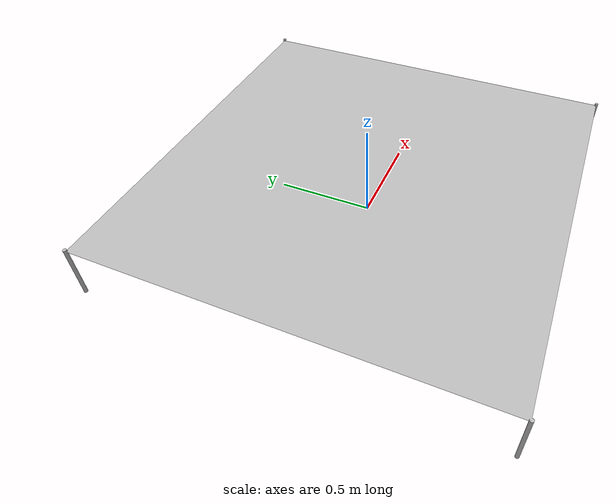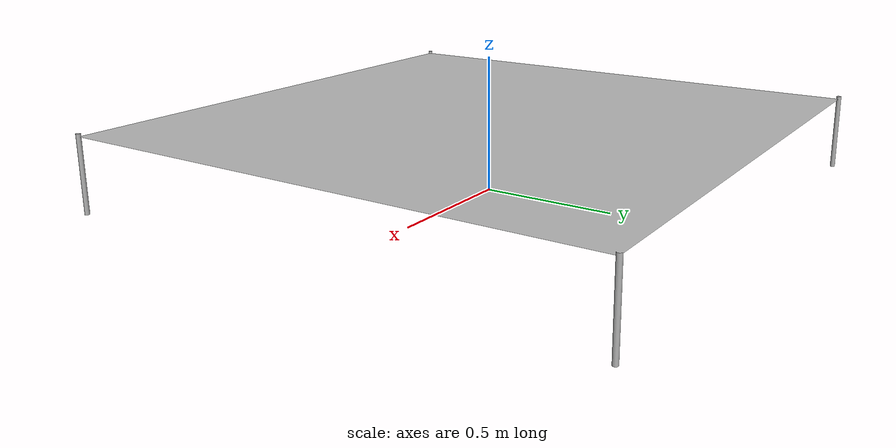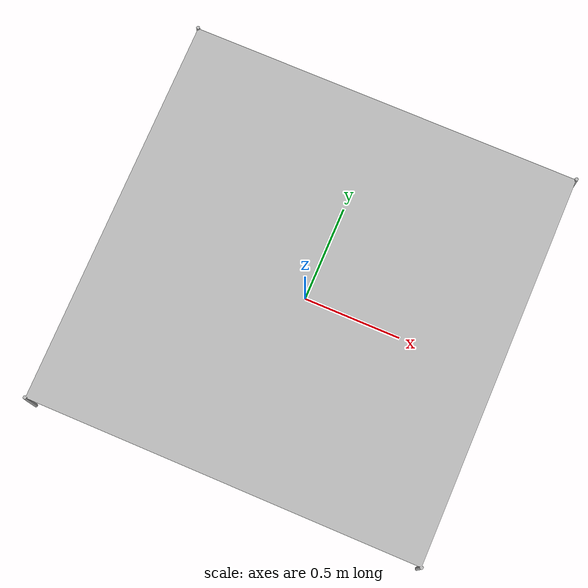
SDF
<?xml version="1.0" ?>
<sdf version='1.4'>
  <model name="crater">
      <static>0</static>
        <link name='link_1'>
            <visual name='visual'>
            <pose frame=''>0 0 0 0 0 0</pose>
            <geometry>
            <mesh>
                <uri>model://crater/meshes/crater.dae</uri>
                <scale>1 1 1</scale>
            </mesh>
            </geometry>
            <cast_shadows>0</cast_shadows>
            <transparency>0</transparency>
        </visual>

        <collision name='collision'>
            <laser_retro>1</laser_retro>
            <pose frame=''>0 0 0 0 0 0</pose>
            <geometry>
            <mesh>
                <uri>model://crater/meshes/crater_trick.stl</uri>
                <scale>1 1 1</scale>
            </mesh>
            </geometry>
        </collision>
        </link>
  </model>
</sdf>
